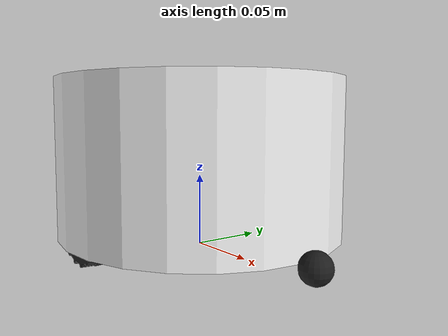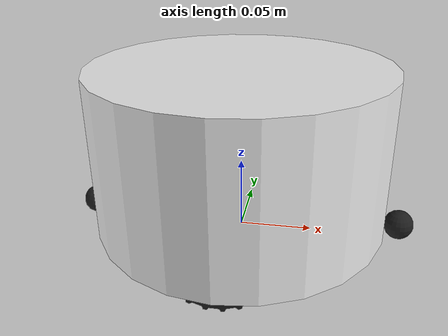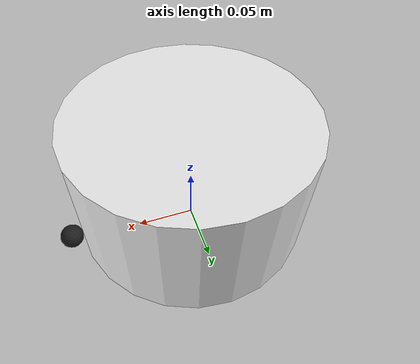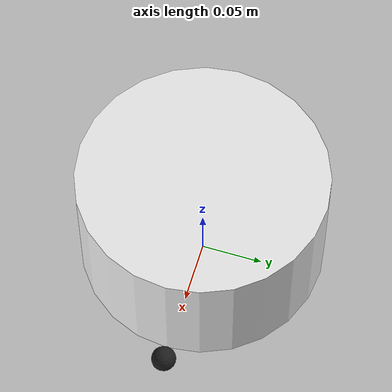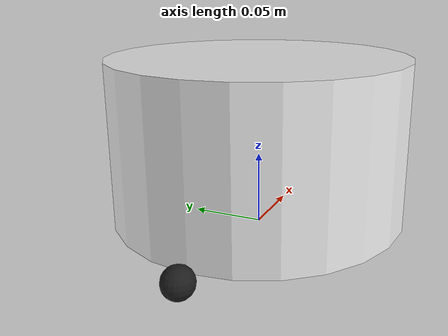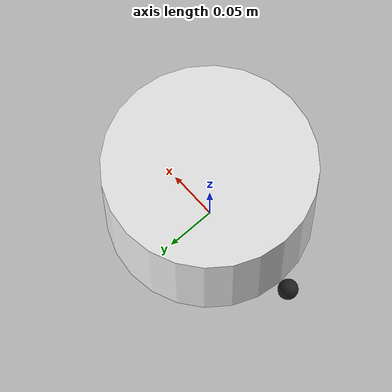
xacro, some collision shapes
<?xml version="1.0"?>
<robot xmlns:controller="http://playerstage.sourceforge.net/gazebo/xmlschema/#controller" xmlns:interface="http://playerstage.sourceforge.net/gazebo/xmlschema/#interface" xmlns:sensor="http://playerstage.sourceforge.net/gazebo/xmlschema/#sensor" xmlns:xacro="http://ros.org/wiki/xacro" name="rvc">
  <xacro:property name="PI" value="3.14159" />
  <xacro:property name="body_radius" value="0.10" />
  <xacro:property name="body_height" value="0.108" />
  <xacro:property name="body_to_ground" value="0.01" />
  <xacro:property name="wheel_radius" value="0.033" />
  <xacro:property name="wheel_width" value="0.024" />
  <xacro:property name="wheel_L" value="0.172" />
  <xacro:macro name="cylinder_inertial" params="mass radius length heart">
    <inertial>
      <origin xyz="${heart}" rpy="0 0 0" />
      <mass value="${mass}" />
      <inertia ixx="${mass * (3 * radius * radius + length * length) / 12}" ixy="0.0" ixz="0.0" iyy="${mass * (3 * radius * radius + length * length) / 12}" iyz="0.0" izz="${mass * radius * radius / 2}" />
    </inertial>
  </xacro:macro>

  <xacro:macro name="sphere_inertia" params="m r">
    <inertial>
      <mass value="${m}"/>
      <inertia ixx="${2*m*r*r/5}" ixy = "0" ixz = "0" iyy="${2*m*r*r/5}" iyz = "0" izz="${2*m*r*r/5}" />
    </inertial>
  </xacro:macro>

  <xacro:macro name="wheel" params="prefix reflect">
    <link name="${prefix}_wheel">
      <collision name="${prefix}_wheel_collision">
        <origin xyz="0 0 0" rpy="0 1.570700 1.570700"/>
        <geometry>
          <cylinder radius="${wheel_radius}" length="${wheel_width}" />
        </geometry>
                <surface>
        <friction>
          <ode>
            <mu>1</mu>
            <mu2>0</mu2>
            <fdir1>0 1.0 0</fdir1>
            <implicit_spring_damper>true</implicit_spring_damper>
          </ode>
        </friction>
      </surface>
      </collision>
      <visual>
        <origin xyz="0 0 0" rpy="0 1.570700 1.570700" />
        <geometry>
          <mesh filename="package://lidarcar_description/meshes/RobotWheel.dae" />
        </geometry>
      </visual>
      <xacro:cylinder_inertial mass="0.2" radius="${wheel_radius}" length="${wheel_width}" heart="0 0 0" />
    </link>
    <joint name="${prefix}_wheel_joint" type="continuous">
      <parent link="base_link"/>
      <child link="${prefix}_wheel"/>
      <axis xyz="0 1 0" rpy="0 0 0"/>
      <origin xyz="0 ${reflect * wheel_L / 2} ${wheel_radius}" rpy="0 0 0"/>
    </joint>

    <transmission name="${prefix}_wheel_trans">
      <type>transmission_interface/SimpleTransmission</type>
      <actuator name="${prefix}_wheel_motor">
        <mechanicalReduction>1</mechanicalReduction>
      </actuator>
      <joint name="${prefix}_wheel_joint">
        <hardwareInterface>hardware_interface/VelocityJointInterface</hardwareInterface>
      </joint>
    </transmission>

    <gazebo reference="${prefix}_wheel">
      <mu1>800.0</mu1>
      <mu2>400.0</mu2>
      <kp>10000000.0</kp>
      <kd>10.0</kd>
      <fdir1>1 0 0</fdir1>
      <maxVel>1.0</maxVel>
      <minDepth>0.00</minDepth>
      <material>Gazebo/Black</material>
    </gazebo>

  </xacro:macro>
  <link name="base_link"></link>
  <link name="body">
    <visual>
      <origin xyz="0 0 -${body_height/2}" rpy="0 ${PI} ${-PI/2}" />
      <geometry>
        <mesh filename="package://lidarcar_description/meshes/LidarCar.dae" />
      </geometry>
      <material name="white" />
    </visual>
    <collision name="boby_collision">
      <origin xyz="0 0 0" rpy="0 0 0" />
      <geometry>
        <cylinder length="${body_height}" radius="${body_radius}" />
      </geometry>
    </collision>

    <xacro:cylinder_inertial mass="0.4" radius="${body_radius}" length="${body_height}" heart="0 0 0"/>
  </link>

  <joint name="body_to_base" type="fixed">
    <axis rpy="0 0 0" xyz="0 0 0" />
    <parent link="base_link" />
    <child link="body" />
    <origin xyz="0 0 ${body_to_ground + body_height / 2}" rpy="0 0 0" />
  </joint>

  <link name="front_omni">
    <xacro:sphere_inertia m="0.1" r="${body_to_ground}"/>
    <visual>
      <origin xyz="0 0 0" rpy="0 0 0" />
      <geometry>
        <sphere radius="${body_to_ground}"/>
      </geometry>
    </visual>
    <collision name="front_omniwheel">
      <origin xyz="0 0 0" rpy="0 0 0" />
      <geometry>
        <sphere radius="${body_to_ground}"/>
      </geometry>
    </collision>
  </link>
  <joint name="front_omni_to_base" type="continuous">
    <parent link="body"/>
    <child link="front_omni"/>
    <origin xyz="0.11 0 -${body_to_ground+body_height/2-body_to_ground}" rpy="0 0 0"/>
    <axis xyz="0 1 0" />
  </joint>
  <gazebo reference="front_omni">
    <mu1>0.0</mu1>
    <mu2>0.0</mu2>
    <kp>10000000.0</kp>
    <kd>10.0</kd>
    <fdir1>1 0 0</fdir1>
    <maxVel>1.0</maxVel>
    <minDepth>0.00</minDepth>
    <turnGravityOff>false</turnGravityOff>
    <material>Gazebo/Black</material>
  </gazebo>
  <link name="back_omni">
    <xacro:sphere_inertia m="0.1" r="${body_to_ground}"/>
    <visual>
      <origin xyz="0 0 0" rpy="0 0 0" />
      <geometry>
        <sphere radius="${body_to_ground}"/>
      </geometry>
    </visual>
    <collision name="back_omniwheel">
      <origin xyz="0 0 0" rpy="0 0 0" />
      <geometry>
        <sphere radius="${body_to_ground}"/>
      </geometry>
    </collision>
  </link>
  <joint name="back_omni_to_base" type="continuous">
    <parent link="body"/>
    <child link="back_omni"/>
    <origin xyz="-0.11 0 -${body_to_ground+body_height/2-body_to_ground}" rpy="0 0 0"/>
    <axis xyz="0 1 0" />
  </joint>
  <gazebo reference="back_omni">
    <mu1>0.0</mu1>
    <mu2>0.0</mu2>
    <kp>10000000.0</kp>
    <kd>10.0</kd>
    <fdir1>1 0 0</fdir1>
    <maxVel>1.0</maxVel>
    <minDepth>0.00</minDepth>
    <turnGravityOff>false</turnGravityOff>
    <material>Gazebo/Black</material>
  </gazebo>

  <xacro:macro name="ir_recevier" params="prefix angle color">
    <link name="ir_recevier_${prefix}">
      <visual>
        <origin xyz="0 0 0" rpy="0 0 0" />
        <geometry>
          <sphere radius="0.005" />
        </geometry>
      </visual>
    </link>
    <joint name="ir_recevier_${prefix}_joint" type="fixed">
      <axis rpy="0 0 0" xyz="0 0 0" />
      <parent link="body" />
      <child link="ir_recevier_${prefix}" />
      <origin xyz="${(body_radius-0.003) * cos(angle)} ${(body_radius-0.003) * sin(angle)} 0.015" rpy="0 0 ${angle}" />
    </joint>
    <gazebo reference="ir_recevier_${prefix}">
      <material>${color}</material>
    </gazebo>
  </xacro:macro>

  <xacro:macro name="scan1d" params="prefix x y z roll yaw">
    <link name="scan1d_${prefix}">
    </link>
    <joint name="scan1d_${prefix}_joint" type="fixed">
      <parent link="base_link" />
      <child link="scan1d_${prefix}" />
      <origin xyz="${x} ${y} ${z}" rpy="${roll} ${PI*17/180} ${yaw}"/>
    </joint>
  </xacro:macro>

  <xacro:wheel prefix="left" reflect="1" />
  <xacro:wheel prefix="right" reflect="-1" />

  <xacro:scan1d prefix="left" x="0.08508" y="0.052785" z="0.03" roll="0" yaw="${PI*20/180}"/>
  <xacro:scan1d prefix="right" x="0.08508" y="-0.052785" z="0.03" roll="0" yaw="${-PI*20/180}"/>
  <xacro:scan1d prefix="center" x="0.06" y="0" z="0.05" roll="${PI}" yaw="0"/>
  <xacro:scan1d prefix="edge" x="0.065" y="-0.065" z="0.03" roll="${PI/2}" yaw="0"/>

  <xacro:include filename="lidar.xacro" />
  <joint name="lidar_joint" type="fixed">
    <parent link="body" />
    <child link="lidar_link" />
    <origin xyz="0 0 0.04" rpy="0 0 0"/>
  </joint>

  <!--xacro:include filename="imu.xacro" /-->
  <link name="imu_link">
    <visual>
      <origin xyz="0 0 0" rpy="0 0 0" />
      <geometry>
        <cylinder length="0.001" radius="0.001" />
      </geometry>
      <material name="white" />
    </visual>
  </link>

  <joint name="imu_joint" type="fixed">
    <parent link="body" />
    <child link="imu_link" />
    <origin xyz="0 0 0" />
  </joint>

  <gazebo reference="imu_link">
    <gravity>true</gravity>
    <sensor name="imu_sensor" type="imu">
      <always_on>true</always_on>
      <update_rate>100</update_rate>
      <visualize>true</visualize>
      <topic>__default_topic__</topic>
      <plugin filename="libgazebo_ros_imu_sensor.so" name="imu_plugin">
        <topicName>/imu</topicName>
        <bodyName>imu_link</bodyName>
        <updateRateHZ>50.0</updateRateHZ>
        <gaussianNoise>0.0</gaussianNoise>
        <xyzOffset>0 0 0</xyzOffset>
        <rpyOffset>0 0 0</rpyOffset>
        <frameName>imu_link</frameName>
        <initialOrientationAsReference>false</initialOrientationAsReference>
      </plugin>
      <pose>0 0 0 0 0 0</pose>
    </sensor>
  </gazebo>

  <!-- Gazebo plugin for ROS Control -->
  <gazebo>
    <plugin name="gazebo_ros_control" filename="libgazebo_ros_control.so">
      <robotNamespace>/</robotNamespace>
      <legacyModeNS>true</legacyModeNS>
    </plugin>
  </gazebo>
</robot>

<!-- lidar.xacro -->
<robot xmlns:controller="http://playerstage.sourceforge.net/gazebo/xmlschema/#controller"
    xmlns:interface="http://playerstage.sourceforge.net/gazebo/xmlschema/#interface"
    xmlns:sensor="http://playerstage.sourceforge.net/gazebo/xmlschema/#sensor"
    xmlns:xacro="http://ros.org/wiki/xacro" name="lidar">
    <xacro:property name="PI" value="3.14159" />
    <xacro:property name="lidar_radius" value="0.029" />
    <xacro:property name="lidar_height" value="0.017" />
    <xacro:macro name="cylinder_inertial" params="mass radius length">
        <inertial>
            <mass value="${mass}"/>
            <inertia ixx="${mass * (3 * radius * radius + length * length) / 12}" ixy="0.0" ixz="0.0" iyy="${mass * (3 * radius * radius + length * length) / 12}" iyz="0.0" izz="${mass * radius * radius / 2}"/>
        </inertial>
    </xacro:macro>
    <link name="lidar_link">
        <collision name="collision">
            <origin xyz="0 0 0" rpy="0 0 0"/>
            <geometry>
                <cylinder radius="${lidar_radius}" length="${lidar_height}"/>
            </geometry>
        </collision>
        <cylinder_inertial mass="0.2" radius="${lidar_radius}" length="${lidar_height}"/>
    </link>

    <link name="laser_link">
    </link>

    <joint name="laser_joint" type="fixed">
      <axis rpy="0 0 0" xyz="0 0 0"/>
      <parent link="lidar_link"/>
      <child link="laser_link"/>
      <origin xyz="0 0 0.005" rpy="0 0 0"/>
    </joint>

    <gazebo reference="laser_link">
        <sensor type="ray" name="eai_lidar">
            <pose>0 0 0 0 0 0</pose>
            <visualize>false</visualize>
            <update_rate>5</update_rate>
            <ray>
                <scan>
                    <horizontal>
                        <samples>360</samples>
                        <resolution>1</resolution>
                        <min_angle>0</min_angle>
                        <max_angle>${PI * 2}</max_angle>
                    </horizontal>
                </scan>
                <range>
                    <min>0.10</min>
                    <max>8.0</max>
                    <resolution>0.01</resolution>
                </range>
                <noise>
                    <type>gaussian</type>
                    <mean>0.0</mean>
                    <stddev>0.01</stddev>
                </noise>
            </ray>
            <plugin name="gazebo_ros_lidar_controller" filename="libgazebo_ros_laser.so">
                <topicName>/scan</topicName>
                <frameName>lidar_link</frameName>
            </plugin>
        </sensor>
    </gazebo>
</robot>
